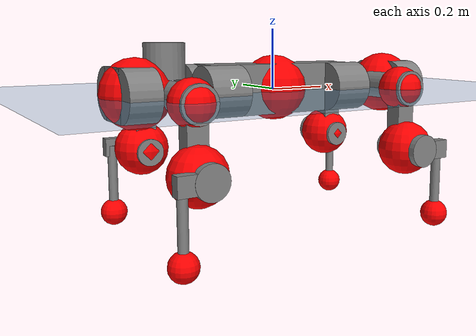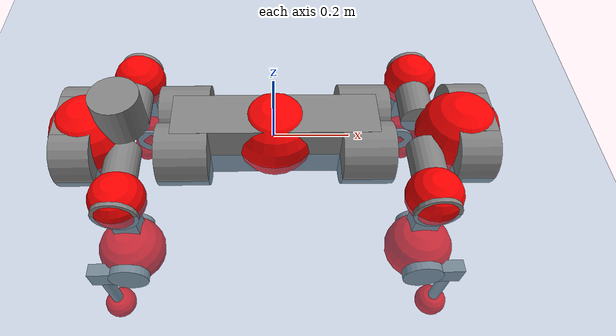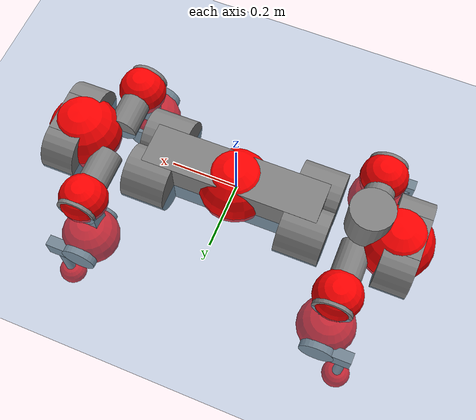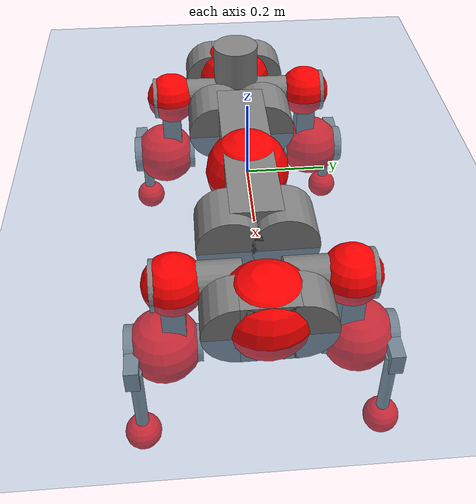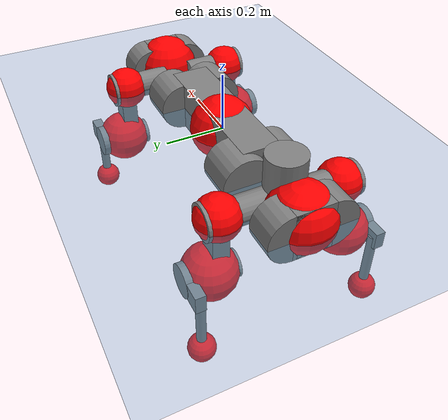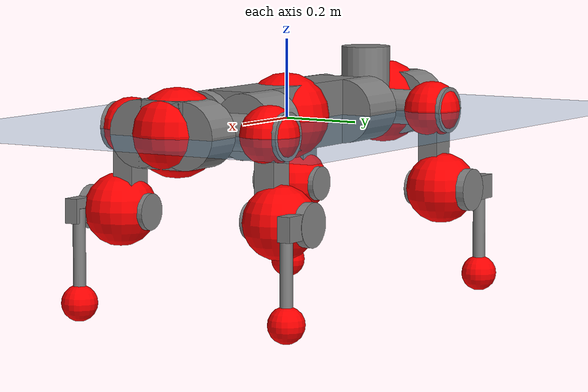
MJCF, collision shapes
<mujoco model="anymal_c">
  <compiler angle="radian" assetdir="assets" balanceinertia="true" inertiafromgeom="false"/>

  <option timestep="0.005" density="1.2" viscosity="2e-05"/>

  <size nkey="1"/>

  <visual>
    <quality shadowsize="8192"/>
    <map shadowclip="0.5"/>
  </visual>

  <default>
    <default class="/">
      <material specular="0" shininess="0.25"/>
      <geom contype="0" conaffinity="0" group="1" solref="-1000 -80"/>
      <site size="0.01 0.005 0.005" group="5"/>
      <general forcelimited="true" forcerange="-80 80" biastype="affine" gainprm="80" biasprm="0 -80 -2"/>
      <default class="anymal_c">
        <joint armature="0.01" damping="0.01" frictionloss="0.1"/>
        <default class="visual">
          <geom type="mesh" group="2"/>
          <default class="visual_zflip"/>
        </default>
        <default class="collision">
          <geom type="cylinder" group="3"/>
          <default class="foot">
            <geom size="0.03 0 0" type="sphere" condim="6" priority="1" friction="0.8 0.02 0.01" solimp="0.015 1 0.03"/>
          </default>
        </default>
      </default>
      <default class="reward_collision_sphere">
        <geom group="5" rgba="1 0 0 1"/>
      </default>
    </default>
  </default>

  <asset>
    <texture type="skybox" colorspace="auto" name="//unnamed_texture_0" builtin="gradient" rgb1="0.95 0.95 0.95" rgb2="0.95 0.95 0.95" width="100" height="600"/>
    <texture type="2d" colorspace="auto" name="texplane" builtin="checker" rgb1="0.345 0.575 0.748" rgb2="0.345 0.575 0.748" markrgb="1 1 1" width="512" height="512"/>
    <texture type="2d" colorspace="linear" name="base" file="base.png"/>
    <texture type="2d" colorspace="linear" name="top_shell" file="top_shell.png"/>
    <texture type="2d" colorspace="linear" name="bottom_shell" file="bottom_shell.png"/>
    <texture type="2d" colorspace="linear" name="remote" file="remote.png"/>
    <texture type="2d" colorspace="linear" name="hatch" file="hatch.png"/>
    <texture type="2d" colorspace="linear" name="handle" file="handle.png"/>
    <texture type="2d" colorspace="linear" name="face" file="face.png"/>
    <texture type="2d" colorspace="linear" name="battery" file="battery.png"/>
    <texture type="2d" colorspace="linear" name="lidar_cage" file="lidar_cage.png"/>
    <texture type="2d" colorspace="linear" name="depth_camera" file="depth_camera.png"/>
    <texture type="2d" colorspace="linear" name="wide_angle_camera" file="wide_angle_camera.png"/>
    <texture type="2d" colorspace="linear" name="lidar" file="lidar.png"/>
    <texture type="2d" colorspace="linear" name="drive" file="drive.png"/>
    <texture type="2d" colorspace="linear" name="hip_l" file="hip_l.png"/>
    <texture type="2d" colorspace="linear" name="shank_l" file="shank_l.png"/>
    <texture type="2d" colorspace="linear" name="foot" file="foot.png"/>
    <texture type="2d" colorspace="linear" name="thigh" file="thigh.png"/>
    <texture type="2d" colorspace="linear" name="shank_r" file="shank_r.png"/>
    <texture type="2d" colorspace="linear" name="hip_r" file="hip_r.png"/>
    <material name="MatPlane" class="/" texture="texplane" texuniform="true" texrepeat="2 2" specular="0.9" shininess="0.5"/>
    <material name="black_plastic" class="/" rgba="0.007 0.007 0.007 1"/>
    <material name="green" class="/" rgba="0.052 0.178 0.033 1"/>
    <material name="red" class="/" rgba="0.178 0.006 0.005 1"/>
    <material name="yellow" class="/" rgba="0.178 0.119 0.006 1"/>
    <material name="lwl" class="/" rgba="0.8 0.8 0.8 1"/>
    <material name="base" class="/" texture="base"/>
    <material name="top_shell" class="/" texture="top_shell"/>
    <material name="bottom_shell" class="/" texture="bottom_shell"/>
    <material name="hip_l" class="/" texture="hip_l"/>
    <material name="thigh" class="/" texture="thigh"/>
    <material name="shank_l" class="/" texture="shank_l"/>
    <material name="foot" class="/" texture="foot"/>
    <material name="hip_r" class="/" texture="hip_r"/>
    <material name="shank" class="/" texture="shank_r"/>
    <material name="hatch" class="/" texture="hatch"/>
    <material name="remote" class="/" texture="remote"/>
    <material name="handle" class="/" texture="handle"/>
    <material name="face" class="/" texture="face"/>
    <material name="depth_camera" class="/" texture="depth_camera"/>
    <material name="wide_angle_camera" class="/" texture="wide_angle_camera"/>
    <material name="battery" class="/" texture="battery"/>
    <material name="lidar_cage" class="/" texture="lidar_cage"/>
    <material name="lidar" class="/" texture="lidar"/>
    <material name="drive" class="/" texture="drive"/>
    <mesh name="base_0" class="/" file="base_0.obj"/>
    <mesh name="base_1" class="/" file="base_1.obj"/>
    <mesh name="base_2" class="/" file="base_2.obj"/>
    <mesh name="base_3" class="/" file="base_3.obj"/>
    <mesh name="base_4" class="/" file="base_4.obj"/>
    <mesh name="base_5" class="/" file="base_5.obj"/>
    <mesh name="top_shell" class="/" file="top_shell.obj"/>
    <mesh name="bottom_shell" class="/" file="bottom_shell.obj"/>
    <mesh name="remote" class="/" file="remote.obj"/>
    <mesh name="handle" class="/" file="handle.obj"/>
    <mesh name="face" class="/" file="face.obj"/>
    <mesh name="wide_angle_camera" class="/" file="wide_angle_camera.obj"/>
    <mesh name="depth_camera" class="/" file="depth_camera.obj"/>
    <mesh name="battery" class="/" file="battery.obj"/>
    <mesh name="lidar_cage" class="/" file="lidar_cage.obj"/>
    <mesh name="lidar" class="/" file="lidar.obj"/>
    <mesh name="drive" class="/" file="drive.obj"/>
    <mesh name="hip_l" class="/" file="hip_l.obj"/>
    <mesh name="thigh" class="/" file="thigh.obj"/>
    <mesh name="shank_l" class="/" file="shank_l.obj"/>
    <mesh name="foot" class="/" file="foot.obj"/>
    <mesh name="hip_r" class="/" file="hip_r.obj"/>
    <mesh name="hatch" class="/" file="hatch.obj"/>
    <mesh name="shank_r" class="/" file="shank_r.obj"/>
  </asset>

  <worldbody>
    <geom name="floor" class="/" size="100 100 0.125" type="plane" group="0" material="MatPlane"/>
    <light name="toplight_shadow" class="/" pos="0 0 5" dir="0.0990148 0.0990148 -0.990148" type="directional" ambient="0.04 0.04 0.04" diffuse="0.55 0.55 0.55" specular="0.12 0.12 0.12"/>
    <light name="toplight_fill" class="/" pos="0 0 5" dir="0.0990148 0.0990148 -0.990148" type="directional" castshadow="false" ambient="0.04 0.04 0.04" diffuse="0.3 0.3 0.3" specular="0.08 0.08 0.08"/>
    <body name="trunk" childclass="anymal_c" pos="0.00229602 -0.000464959 0.00626663" quat="0.999996 -0.000173263 0.00155736 0.00213906">
      <inertial pos="0.00391519 -0.00368319 0.0303828" quat="0.490545 0.507277 0.516097 0.485468" mass="13.5755" diaginertia="0.83521 0.368174 0.0404497"/>
      <joint name="//unnamed_joint_0" type="free" armature="0" damping="0" frictionloss="0"/>
      <geom name="//unnamed_geom_1" class="visual" material="green" mesh="base_0"/>
      <geom name="//unnamed_geom_2" class="visual" material="yellow" mesh="base_1"/>
      <geom name="//unnamed_geom_3" class="visual" material="red" mesh="base_2"/>
      <geom name="//unnamed_geom_4" class="visual" material="black_plastic" mesh="base_3"/>
      <geom name="//unnamed_geom_5" class="visual" material="lwl" mesh="base_4"/>
      <geom name="//unnamed_geom_6" class="visual" material="base" mesh="base_5"/>
      <geom name="trunk_1" class="collision" size="0.263681 0.0636471 0.081832" type="box"/>
      <geom name="trunk_2" class="collision" size="0.081832 0.0659202" pos="0.235059 0.0645248 0" quat="0.707107 0 0.707107 0"/>
      <geom name="trunk_3" class="collision" size="0.081832 0.0659202" pos="-0.235059 0.0645248 0" quat="0.707107 0 0.707107 0"/>
      <geom name="trunk_4" class="collision" size="0.081832 0.0659202" pos="0.235059 -0.0645248 0" quat="0.707107 0 0.707107 0"/>
      <geom name="trunk_5" class="collision" size="0.081832 0.0659202" pos="-0.235059 -0.0645248 0" quat="0.707107 0 0.707107 0"/>
      <geom name="//unnamed_geom_12" class="visual" material="top_shell" mesh="top_shell"/>
      <geom name="//unnamed_geom_13" class="visual" material="bottom_shell" mesh="bottom_shell"/>
      <geom name="//unnamed_geom_14" class="visual" material="remote" mesh="remote"/>
      <geom name="//unnamed_geom_15" class="visual" material="handle" mesh="handle"/>
      <geom name="//unnamed_geom_16" class="visual" pos="0.447964 0 0" quat="1 0 0 0" material="face" mesh="face"/>
      <geom name="trunk_6" class="collision" size="0.0500084 0.0636471 0.081832" pos="0.507404 0 0" type="box"/>
      <geom name="//unnamed_geom_18" class="collision" size="0.081832 0.0500084" pos="0.507404 0.0645248 0" quat="0.707107 0 0.707107 0"/>
      <geom name="//unnamed_geom_19" class="collision" size="0.081832 0.0500084" pos="0.507404 -0.0645248 0" quat="0.707107 0 0.707107 0"/>
      <geom name="//unnamed_geom_20" class="visual" pos="0.498905 0 -0.0184744" quat="0.965926 0 0.258819 0" material="depth_camera" mesh="depth_camera"/>
      <geom name="//unnamed_geom_21" class="visual" pos="0.554416 0 0.0108565" material="wide_angle_camera" mesh="wide_angle_camera"/>
      <geom name="//unnamed_geom_22" class="visual_zflip" pos="-0.447964 0 0" quat="0 0 0 1" material="face" mesh="face"/>
      <geom name="trunk_7" class="collision" size="0.0500084 0.0636471 0.081832" pos="-0.507404 0 0" quat="0 0 0 1" type="box"/>
      <geom name="//unnamed_geom_24" class="collision" size="0.081832 0.0500084" pos="-0.507404 -0.0645248 0" quat="0 -0.707107 0 0.707107"/>
      <geom name="//unnamed_geom_25" class="collision" size="0.081832 0.0500084" pos="-0.507404 0.0645248 0" quat="0 -0.707107 0 0.707107"/>
      <geom name="//unnamed_geom_26" class="visual" pos="-0.498905 0 -0.0184744" quat="0 -0.258819 0 0.965926" material="depth_camera" mesh="depth_camera"/>
      <geom name="//unnamed_geom_27" class="visual_zflip" pos="-0.554416 0 0.0108565" quat="0 0 0 1" material="wide_angle_camera" mesh="wide_angle_camera"/>
      <geom name="//unnamed_geom_28" class="visual" material="battery" mesh="battery"/>
      <geom name="//unnamed_geom_29" class="visual" pos="0 0.0683791 0.0237694" quat="0.683013 -0.183013 0.183013 0.683013" material="depth_camera" mesh="depth_camera"/>
      <geom name="//unnamed_geom_30" class="visual" pos="0 -0.0683791 0.0237694" quat="0.683013 0.183013 0.183013 -0.683013" material="depth_camera" mesh="depth_camera"/>
      <geom name="//unnamed_geom_31" class="visual" pos="-0.393387 0 0.0533034" quat="1 0 0 0" material="lidar_cage" mesh="lidar_cage"/>
      <geom name="trunk_8" class="collision" size="0.0636471 0.0545546" pos="-0.393387 0 0.0968163"/>
      <geom name="//unnamed_geom_33" class="visual" pos="-0.393387 -6.24468e-05 0.103126" quat="0.707107 0 0 -0.707107" material="lidar" mesh="lidar"/>
      <geom name="//unnamed_geom_34" class="visual" pos="0.324112 0.0957957 3.39082e-09" quat="0.258819 0.965926 0 0" material="drive" mesh="drive"/>
      <geom name="//unnamed_geom_35" class="visual" pos="0.324112 -0.0957957 -3.39082e-09" quat="0.258819 -0.965926 0 0" material="drive" mesh="drive"/>
      <geom name="//unnamed_geom_36" class="visual" pos="-0.324112 0.0957957 -3.39082e-09" quat="0 0 0.965926 -0.258819" material="drive" mesh="drive"/>
      <geom name="//unnamed_geom_37" class="visual" pos="-0.324112 -0.0957957 3.39082e-09" quat="0 0 -0.965926 -0.258819" material="drive" mesh="drive"/>
      <geom name="//unnamed_geom_38" class="visual" pos="0.125365 0 0.0529407" quat="1 0 0 0" material="hatch" mesh="hatch"/>
      <geom name="//unnamed_geom_39" class="reward_collision_sphere" size="0.109109"/>
      <geom name="//unnamed_geom_40" class="reward_collision_sphere" size="0.109109" pos="0.48633 0 0"/>
      <geom name="//unnamed_geom_41" class="reward_collision_sphere" size="0.109109" pos="-0.48633 0 0"/>
      <site name="imu" pos="0.280464 0.00330866 0.0489181" size="0.00909244"/>
      <camera name="track" pos="0 -1.84357 0" quat="0.707107 0.707107 0 0" mode="trackcom"/>
      <camera name="ego_camera" pos="0.48633 0 -0.0290086" quat="-0.5 -0.5 0.5 0.5"/>
      <body name="LF_HIP" pos="0.325683 0.0978746 -0.000637509" quat="0.258808 0.965929 -0.000311135 -0.000192233">
        <inertial pos="0.0660432 -0.014039 -7.02005e-05" quat="-0.14087 0.702183 -0.111035 0.689033" mass="2.12171" diaginertia="0.0084405 0.00322908 0.00066319"/>
        <joint name="LF_HAA" pos="0 0 0" axis="0.999773 -0.00176474 0.021212" stiffness="0.00891333" range="-0.720934 0.48196" armature="0.00926159" damping="0.0196133" frictionloss="0.0893798"/>
        <geom name="//unnamed_geom_42" class="visual" pos="0 0.000199466 -3.27622e-05" quat="0.258819 -0.965926 0 0" material="hip_l" mesh="hip_l"/>
        <geom name="//unnamed_geom_43" class="visual" pos="0.0647359 -0.0762787 -0.0425856" quat="0.183013 -0.683013 0.683013 0.183013" material="drive" mesh="drive"/>
        <geom name="//unnamed_geom_44" class="collision" size="0.0454622 0.0636471" pos="0.0647359 -0.0110243 -0.00500761" quat="-0.353553 -0.612372 0.612372 -0.353553"/>
        <body name="LF_THIGH" pos="0.0681977 -0.0681435 -0.0350087" quat="0.183076 -0.6831 0.682978 0.182754">
          <inertial pos="0.033289 0.0001636 -0.179576" quat="0.993533 -0.00156304 -0.0829464 0.077521" mass="2.49676" diaginertia="0.0483082 0.0209178 0.000921917"/>
          <joint name="LF_HFE" pos="0 0 0" axis="0.999993 0.00254474 -0.00282191" stiffness="0.00271918" range="-3.13047 3.13098" armature="0.0100763" damping="0" frictionloss="0.0919752"/>
          <geom name="//unnamed_geom_45" class="visual" pos="0.00316246 4.9833e-06 0" quat="0.707107 0 0 -0.707107" material="thigh" mesh="thigh"/>
          <geom name="//unnamed_geom_46" class="collision" size="0.0591009 0.0363698" pos="0.0432293 0 0" quat="0.5 0.5 -0.5 -0.5"/>
          <geom name="//unnamed_geom_47" class="collision" size="0.0340966 0.0272773 0.128489" pos="0.032422 0 -0.102483" quat="0.707107 0 0 -0.707107" type="box"/>
          <geom name="//unnamed_geom_48" class="visual" pos="0.108397 0 -0.206686" quat="1 0 0 0" material="drive" mesh="drive"/>
          <geom name="//unnamed_geom_49" class="collision" size="0.0454622 0.0636471" pos="0.0327462 0 -0.206686" quat="0.707107 0 0.707107 0"/>
          <geom name="//unnamed_geom_50" class="reward_collision_sphere" size="0.0727395" pos="0.0270183 0 0"/>
          <body name="LF_SHANK" pos="0.111048 -0.0023566 -0.205697" quat="1 1.98306e-05 1.25883e-05 -3.47782e-05">
            <inertial pos="0.0132847 -0.0508365 -0.0591914" quat="0.993325 -0.113796 -0.00183326 -0.0187974" mass="0.435168" diaginertia="0.0157075 0.00622243 0.000222461"/>
            <joint name="LF_KFE" pos="0 0 0" axis="0.999976 0.00292393 0.00631178" range="-2.99744 3.12252" armature="0.00838703" damping="0.000124964" frictionloss="0.0607178"/>
            <geom name="//unnamed_geom_51" class="visual" pos="0.00103121 0.00549846 0" quat="0.707107 0 0 -0.707107" material="shank_l" mesh="shank_l"/>
            <geom name="LF_kfe_act" class="collision" size="0.0545546 0.0181849" pos="0.0216147 0 0" quat="0.5 0.5 -0.5 -0.5"/>
            <geom name="//unnamed_geom_53" class="collision" size="0.0522806 0.030687 0.0172756" pos="0.0216147 -0.0530016 0" quat="0.5 0.5 -0.5 -0.5" type="box"/>
            <geom name="//unnamed_geom_54" class="visual" pos="0.0141033 -0.0792989 -0.245101" quat="0.382683 0 0 -0.92388" material="foot" mesh="foot"/>
            <geom name="LF_calf" class="collision" size="0.0159118 0.128433" pos="0.0141036 -0.0810709 -0.122551" quat="0.707107 0 0 -0.707107"/>
            <geom name="LF_foot" class="foot" size="0.0319701" pos="0.0141036 -0.0810709 -0.228784" quat="0.707107 0 0 -0.707107"/>
            <geom name="//unnamed_geom_57" class="reward_collision_sphere" size="0.0909244" pos="-0.0540366 0 0"/>
            <geom name="//unnamed_geom_58" class="reward_collision_sphere" size="0.0454622" pos="0.0141036 -0.0810709 -0.228784"/>
            <site name="LF_foot" class="foot" pos="0.0141036 -0.0810709 -0.228784" quat="0.707107 0 0 -0.707107" size="0.00909244"/>
          </body>
        </body>
      </body>
      <body name="RF_HIP" pos="0.324922 -0.0974694 0.00127975" quat="0.257342 -0.966316 -0.00284896 0.00111223">
        <inertial pos="0.0603936 0.0149007 -0.0049305" quat="0.110278 0.666387 0.134291 0.725075" mass="1.88151" diaginertia="0.00870834 0.00318297 0.000665403"/>
        <joint name="RF_HAA" pos="0 0 0" axis="0.999994 0.00337707 -6.57201e-05" stiffness="0.0156779" range="-0.367594 0.729398" armature="0.00994244" damping="0.0149741" frictionloss="0.0839552"/>
        <geom name="//unnamed_geom_59" class="visual" pos="0 -0.000199465 -3.27621e-05" quat="0.258819 0.965926 0 0" material="hip_r" mesh="hip_r"/>
        <geom name="//unnamed_geom_60" class="visual" pos="0.0647359 0.0762787 -0.0425856" quat="0.183013 0.683013 0.683013 -0.183013" material="drive" mesh="drive"/>
        <geom name="//unnamed_geom_61" class="collision" size="0.0454622 0.0636471" pos="0.0647359 0.0110243 -0.00500761" quat="-0.353553 0.612372 0.612372 0.353553"/>
        <body name="RF_THIGH" pos="0.065691 0.0677712 -0.0328537" quat="0.18301 0.683019 0.683016 -0.182978">
          <inertial pos="0.0332108 -0.000316103 -0.17929" quat="0.993031 -0.0128827 -0.0818715 0.0837905" mass="2.23947" diaginertia="0.0455744 0.0208906 0.000850635"/>
          <joint name="RF_HFE" pos="0 0 0" axis="0.999996 0.000243145 -0.00292301" range="-3.15099 3.15464" armature="0.00884501" damping="0.0435052" frictionloss="0.105432"/>
          <geom name="//unnamed_geom_62" class="visual" pos="0.00316246 4.9833e-06 0" quat="0.707107 0 0 -0.707107" material="thigh" mesh="thigh"/>
          <geom name="//unnamed_geom_63" class="collision" size="0.0591009 0.0363698" pos="0.0432293 0 0" quat="0.5 0.5 0.5 0.5"/>
          <geom name="//unnamed_geom_64" class="collision" size="0.0340966 0.0272773 0.128489" pos="0.032422 0 -0.102483" quat="0.707107 0 0 0.707107" type="box"/>
          <geom name="//unnamed_geom_65" class="visual" pos="0.108397 0 -0.206686" quat="1 0 0 0" material="drive" mesh="drive"/>
          <geom name="//unnamed_geom_66" class="collision" size="0.0454622 0.0636471" pos="0.0327462 0 -0.206686" quat="0.707107 0 0.707107 0"/>
          <geom name="//unnamed_geom_67" class="reward_collision_sphere" size="0.0727395" pos="0.0270183 0 0"/>
          <body name="RF_SHANK" pos="0.114078 0.0010238 -0.205056" quat="0.999999 5.42398e-05 -0.00101171 0.000483937">
            <inertial pos="0.00415415 0.0614733 -0.061623" quat="0.994593 0.0960115 0.0271904 0.0287468" mass="0.456621" diaginertia="0.0156038 0.0061813 0.000243006"/>
            <joint name="RF_KFE" pos="0 0 0" axis="0.999948 -0.00747207 -0.00688795" range="-3.12311 3.09131" armature="0.00948325" damping="0.0172182" frictionloss="0.0908027"/>
            <geom name="//unnamed_geom_68" class="visual" pos="0.0010312 -0.00549845 0" quat="0.707107 0 0 0.707107" material="shank" mesh="shank_r"/>
            <geom name="RF_kfe_act" class="collision" size="0.0545546 0.0181849" pos="0.0216147 0 0" quat="0.5 0.5 0.5 0.5"/>
            <geom name="//unnamed_geom_70" class="collision" size="0.0522806 0.030687 0.0172756" pos="0.0216147 0.0530016 0" quat="0.5 0.5 0.5 0.5" type="box"/>
            <geom name="//unnamed_geom_71" class="visual" pos="0.0141038 0.0792989 -0.245101" quat="0.382683 0 0 0.92388" material="foot" mesh="foot"/>
            <geom name="RF_calf" class="collision" size="0.0159118 0.128433" pos="0.0141036 0.0810709 -0.122551" quat="0.707107 0 0 0.707107"/>
            <geom name="RF_foot" class="foot" size="0.032144" pos="0.0141036 0.0810709 -0.228784" quat="0.707107 0 0 0.707107"/>
            <geom name="//unnamed_geom_74" class="reward_collision_sphere" size="0.0909244" pos="-0.0540366 0 0"/>
            <geom name="//unnamed_geom_75" class="reward_collision_sphere" size="0.0454622" pos="0.0141036 0.0810709 -0.228784"/>
            <site name="RF_foot" class="foot" pos="0.0141036 0.0810709 -0.228784" quat="0.707107 0 0 0.707107" size="0.00909244"/>
          </body>
        </body>
      </body>
      <body name="LH_HIP" pos="-0.322599 0.0978116 -0.00188159" quat="-0.000424728 0.000276164 0.965675 -0.259754">
        <inertial pos="0.0597044 0.0188703 0.000311883" quat="0.135743 0.682091 0.125472 0.707519" mass="2.05367" diaginertia="0.00871769 0.00334436 0.000691456"/>
        <joint name="LH_HAA" pos="0 0 0" axis="0.999784 0.0199415 0.00588185" stiffness="0.00648289" range="-0.404628 0.61866" armature="0.00725455" damping="0.0187209" frictionloss="0.0944627"/>
        <geom name="//unnamed_geom_76" class="visual" pos="0 -0.000199465 -3.27621e-05" quat="-0.258819 -0.965926 0 0" material="hip_r" mesh="hip_r"/>
        <geom name="//unnamed_geom_77" class="visual" pos="0.0647359 0.0762787 -0.0425856" quat="0.183013 0.683013 0.683013 -0.183013" material="drive" mesh="drive"/>
        <geom name="//unnamed_geom_78" class="collision" size="0.0454622 0.0636471" pos="0.0647359 0.0110243 -0.00500761" quat="-0.353553 0.612372 0.612372 0.353553"/>
        <body name="LH_THIGH" pos="0.0629914 0.0707013 -0.0379072" quat="0.182503 0.682829 0.68304 -0.184102">
          <inertial pos="0.0263174 0.00247321 -0.171295" quat="0.992742 -0.005312 -0.0801436 0.0895132" mass="2.05509" diaginertia="0.0377442 0.0185684 0.000742258"/>
          <joint name="LH_HFE" pos="0 0 0" axis="0.999443 -0.00829731 -0.0323354" range="-3.11086 3.16522" armature="0.00930307" damping="0.0426675" frictionloss="0.0926651"/>
          <geom name="//unnamed_geom_79" class="visual" pos="0.00316246 4.9833e-06 0" quat="0.707107 0 0 -0.707107" material="thigh" mesh="thigh"/>
          <geom name="//unnamed_geom_80" class="collision" size="0.0591009 0.0363698" pos="0.0432293 0 0" quat="0.5 0.5 -0.5 -0.5"/>
          <geom name="//unnamed_geom_81" class="collision" size="0.0340966 0.0272773 0.128489" pos="0.032422 0 -0.102483" quat="0.707107 0 0 -0.707107" type="box"/>
          <geom name="//unnamed_geom_82" class="visual" pos="0.108397 0 -0.206686" quat="1 0 0 0" material="drive" mesh="drive"/>
          <geom name="//unnamed_geom_83" class="collision" size="0.0454622 0.0636471" pos="0.0327462 0 -0.206686" quat="0.707107 0 0.707107 0"/>
          <geom name="//unnamed_geom_84" class="reward_collision_sphere" size="0.0727395" pos="0.0270183 0 0"/>
          <body name="LH_SHANK" pos="0.10936 -0.000898608 -0.203329" quat="0.999999 0.00107174 -0.000306419 0.0011067">
            <inertial pos="0.0118476 0.0543724 -0.0519589" quat="0.99461 0.0987593 -0.0182973 0.025745" mass="0.463137" diaginertia="0.0152677 0.00633705 0.00023266"/>
            <joint name="LH_KFE" pos="0 0 0" axis="0.999963 -0.00426989 -0.00742798" range="-3.10074 3.28663" armature="0.00682493" damping="0.0391416" frictionloss="0.094317"/>
            <geom name="//unnamed_geom_85" class="visual" pos="0.0010312 -0.00549845 0" quat="-0.707107 0 0 -0.707107" material="shank" mesh="shank_r"/>
            <geom name="LH_kfe_act" class="collision" size="0.0545546 0.0181849" pos="0.0216147 0 0" quat="0.5 0.5 -0.5 -0.5"/>
            <geom name="//unnamed_geom_87" class="collision" size="0.0522806 0.030687 0.0172756" pos="0.0216147 0.0530016 0" quat="0.5 0.5 -0.5 -0.5" type="box"/>
            <geom name="//unnamed_geom_88" class="visual" pos="0.0141038 0.0792989 -0.245101" quat="-0.382683 0 0 -0.92388" material="foot" mesh="foot"/>
            <geom name="LH_calf" class="collision" size="0.0159118 0.128433" pos="0.0141036 0.0810709 -0.122551" quat="0.707107 0 0 -0.707107"/>
            <geom name="LH_foot" class="foot" size="0.0275826" pos="0.0141036 0.0810709 -0.228784" quat="0.707107 0 0 -0.707107"/>
            <geom name="//unnamed_geom_91" class="reward_collision_sphere" size="0.0909244" pos="-0.0540366 0 0"/>
            <geom name="//unnamed_geom_92" class="reward_collision_sphere" size="0.0454622" pos="0.0141036 0.0810709 -0.228784"/>
            <site name="LH_foot" class="foot" pos="0.0141036 0.0810709 -0.228784" quat="0.707107 0 0 -0.707107" size="0.00909244"/>
          </body>
        </body>
      </body>
      <body name="RH_HIP" pos="-0.331293 -0.0947473 -0.00488545" quat="-0.000360222 -4.66648e-05 -0.96586 -0.259063">
        <inertial pos="0.064653 -0.0130639 -0.00625262" quat="-0.138844 0.716686 -0.152585 0.666185" mass="2.10582" diaginertia="0.0074022 0.00304096 0.000605578"/>
        <joint name="RH_HAA" pos="0 0 0" axis="0.999335 0.0244305 -0.0270854" range="-0.727568 0.496817" armature="0.00927826" damping="0.0086514" frictionloss="0.0586677"/>
        <geom name="//unnamed_geom_93" class="visual" pos="0 0.000199466 -3.27622e-05" quat="-0.258819 0.965926 0 0" material="hip_l" mesh="hip_l"/>
        <geom name="//unnamed_geom_94" class="visual" pos="0.0647359 -0.0762787 -0.0425856" quat="-0.183013 0.683013 -0.683013 -0.183013" material="drive" mesh="drive"/>
        <geom name="//unnamed_geom_95" class="collision" size="0.0454622 0.0636471" pos="0.0647359 -0.0110243 -0.00500761" quat="0.353553 0.612372 -0.612372 0.353553"/>
        <body name="RH_THIGH" pos="0.0626691 -0.067408 -0.0276283" quat="-0.183725 0.682785 -0.683333 -0.181948">
          <inertial pos="0.0340946 0.000332206 -0.173569" quat="0.993681 -0.00233003 -0.0822215 0.0763757" mass="2.45413" diaginertia="0.0414257 0.0194944 0.000844279"/>
          <joint name="RH_HFE" pos="0 0 0" axis="1 0.00050135 0.000845237" stiffness="0.00375992" range="-3.13479 3.20135" armature="0.00895471" damping="0" frictionloss="0.0819916"/>
          <geom name="//unnamed_geom_96" class="visual" pos="0.00316246 4.9833e-06 0" quat="0.707107 0 0 -0.707107" material="thigh" mesh="thigh"/>
          <geom name="//unnamed_geom_97" class="collision" size="0.0591009 0.0363698" pos="0.0432293 0 0" quat="0.5 0.5 0.5 0.5"/>
          <geom name="//unnamed_geom_98" class="collision" size="0.0340966 0.0272773 0.128489" pos="0.032422 0 -0.102483" quat="0.707107 0 0 0.707107" type="box"/>
          <geom name="//unnamed_geom_99" class="visual" pos="0.108397 0 -0.206686" quat="1 0 0 0" material="drive" mesh="drive"/>
          <geom name="//unnamed_geom_100" class="collision" size="0.0454622 0.0636471" pos="0.0327462 0 -0.206686" quat="0.707107 0 0.707107 0"/>
          <geom name="//unnamed_geom_101" class="reward_collision_sphere" size="0.0727395" pos="0.0270183 0 0"/>
          <body name="RH_SHANK" pos="0.114181 -0.00271235 -0.20391" quat="0.999993 0.000993289 0.0034159 0.00090377">
            <inertial pos="0.00755447 -0.0562377 -0.059459" quat="0.993888 -0.110347 0.00280267 -0.00122629" mass="0.423569" diaginertia="0.0143409 0.00603759 0.000236242"/>
            <joint name="RH_KFE" pos="0 0 0" axis="0.999416 -0.00820889 -0.0331707" stiffness="0.0251898" range="-3.22252 3.09941" armature="0.00898751" damping="0.029156" frictionloss="0.0822771"/>
            <geom name="//unnamed_geom_102" class="visual" pos="0.00103121 0.00549846 0" quat="0.707107 0 0 -0.707107" material="shank_l" mesh="shank_l"/>
            <geom name="RH_kfe_act" class="collision" size="0.0545546 0.0181849" pos="0.0216147 0 0" quat="0.5 0.5 0.5 0.5"/>
            <geom name="//unnamed_geom_104" class="collision" size="0.0522806 0.030687 0.0172756" pos="0.0216147 -0.0530016 0" quat="0.5 0.5 0.5 0.5" type="box"/>
            <geom name="//unnamed_geom_105" class="visual" pos="0.0141033 -0.0792989 -0.245101" quat="0.382683 0 0 -0.92388" material="foot" mesh="foot"/>
            <geom name="RH_calf" class="collision" size="0.0159118 0.128433" pos="0.0141036 -0.0810709 -0.122551" quat="0.707107 0 0 0.707107"/>
            <geom name="RH_foot" class="foot" size="0.0236111" pos="0.0141036 -0.0810709 -0.228784" quat="0.707107 0 0 0.707107"/>
            <geom name="//unnamed_geom_108" class="reward_collision_sphere" size="0.0909244" pos="-0.0540366 0 0"/>
            <geom name="//unnamed_geom_109" class="reward_collision_sphere" size="0.0454622" pos="0.0141036 -0.0810709 -0.228784"/>
            <site name="RH_foot" class="foot" pos="0.0141036 -0.0810709 -0.228784" quat="0.707107 0 0 0.707107" size="0.00909244"/>
          </body>
        </body>
      </body>
    </body>
  </worldbody>

  <contact>
    <pair class="/" geom1="floor" geom2="LF_foot" name="//unnamed_contact_0"/>
    <pair class="/" geom1="floor" geom2="RF_foot" name="//unnamed_contact_1"/>
    <pair class="/" geom1="floor" geom2="LH_foot" name="//unnamed_contact_2"/>
    <pair class="/" geom1="floor" geom2="RH_foot" name="//unnamed_contact_3"/>
  </contact>

  <actuator>
    <general name="LF_HAA" class="/" joint="LF_HAA" forcerange="-74.2888 74.2888" gainprm="75.5627" biasprm="0 -75.5627 -2.13596"/>
    <general name="LF_HFE" class="/" joint="LF_HFE" forcerange="-79.9446 79.9446" gainprm="75.5627" biasprm="0 -75.5627 -2.13596"/>
    <general name="LF_KFE" class="/" joint="LF_KFE" forcerange="-70.8332 70.8332" gainprm="75.5627" biasprm="0 -75.5627 -2.13596"/>
    <general name="RF_HAA" class="/" joint="RF_HAA" forcerange="-66.9739 66.9739" gainprm="75.5627" biasprm="0 -75.5627 -2.13596"/>
    <general name="RF_HFE" class="/" joint="RF_HFE" forcerange="-72.209 72.209" gainprm="75.5627" biasprm="0 -75.5627 -2.13596"/>
    <general name="RF_KFE" class="/" joint="RF_KFE" forcerange="-73.5829 73.5829" gainprm="75.5627" biasprm="0 -75.5627 -2.13596"/>
    <general name="LH_HAA" class="/" joint="LH_HAA" forcerange="-73.3293 73.3293" gainprm="75.5627" biasprm="0 -75.5627 -2.13596"/>
    <general name="LH_HFE" class="/" joint="LH_HFE" forcerange="-89.5395 89.5395" gainprm="75.5627" biasprm="0 -75.5627 -2.13596"/>
    <general name="LH_KFE" class="/" joint="LH_KFE" forcerange="-59.6855 59.6855" gainprm="75.5627" biasprm="0 -75.5627 -2.13596"/>
    <general name="RH_HAA" class="/" joint="RH_HAA" forcerange="-72.7472 72.7472" gainprm="75.5627" biasprm="0 -75.5627 -2.13596"/>
    <general name="RH_HFE" class="/" joint="RH_HFE" forcerange="-69.7395 69.7395" gainprm="75.5627" biasprm="0 -75.5627 -2.13596"/>
    <general name="RH_KFE" class="/" joint="RH_KFE" forcerange="-69.9767 69.9767" gainprm="75.5627" biasprm="0 -75.5627 -2.13596"/>
  </actuator>

  <sensor>
    <gyro site="imu" name="imu_angular_velocity"/>
    <velocimeter site="imu" name="imu_linear_velocity"/>
    <framelinvel objtype="site" objname="LF_foot" name="LF_foot_global_linear_velocity"/>
    <framelinvel objtype="site" objname="RF_foot" name="RF_foot_global_linear_velocity"/>
    <framelinvel objtype="site" objname="LH_foot" name="LH_foot_global_linear_velocity"/>
    <framelinvel objtype="site" objname="RH_foot" name="RH_foot_global_linear_velocity"/>
  </sensor>

  <keyframe>
    <key name="home" qpos="0 0 0.55 1 0 0 0 0 0.4 -0.8 0 -0.4 0.8 0 -0.4 0.8 0 0.4 -0.8"/>
  </keyframe>
</mujoco>
